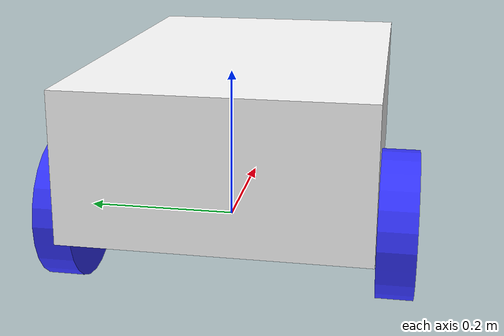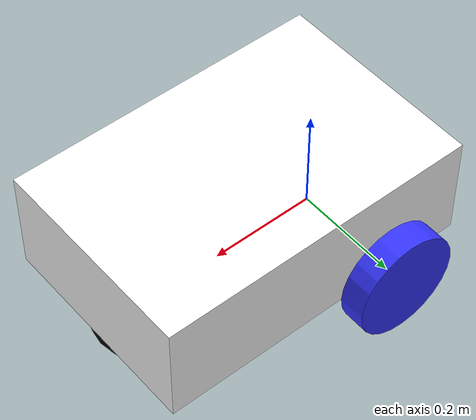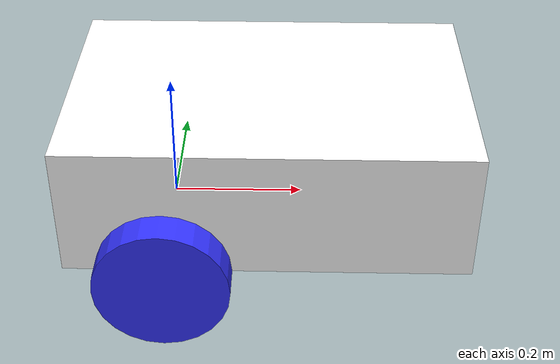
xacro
<?xml version="1.0"?>
<robot xmlns:xacro="http://www.ros.org/wiki/xacro" >

    <xacro:include filename="inertial_macros.xacro"/>

    <material name="white">
        <color rgba="1 1 1 1" />
    </material>
    <material name="blue">
        <color rgba="0.2 0.2 1 1" />
    </material>
    <material name="black">
        <color rgba="0 0 0 1" />
    </material>

    <link name="base_link">
    </link>

    <joint name="chassis_joint" type="fixed">
        <parent link="base_link"/>
        <child link="chassis"/>
        <origin xyz="-0.15 0 0"/>
    </joint>

    <link name="chassis">
        <visual>
            <origin xyz="0.3 0 0.1"/>
            <geometry>
                <box size="0.6 0.4 0.2"/>
            </geometry>
            <material name="white"/>
        </visual>
        <collision>
            <origin xyz="0.3 0 0.1"/>
            <geometry>
                <box size="0.6 0.4 0.2"/>
            </geometry>
        </collision>
        <xacro:inertial_box mass="5.0" x="0.6" y="0.4" z="0.2">
            <origin xyz="0.3 0 0.1" rpy="0 0 0"/>
        </xacro:inertial_box>
    </link>
    <gazebo reference="chassis">
        <material>Gazebo/White</material>
    </gazebo>

    <joint name="left_wheel_joint" type="continuous">
        <parent link="base_link"/>
        <child link="left_wheel"/>
        <origin xyz="0 0.225 0" rpy="-1.5707 0 0" />
        <axis xyz="0 0 1"/>
    </joint>

    <link name="left_wheel">
        <visual>
            <geometry>
                <cylinder radius="0.1" length="0.05"/>
            </geometry>
            <material name="blue"/>
        </visual>
        <collision>
            <geometry>
                <cylinder radius="0.1" length="0.05"/>
            </geometry>
        </collision>
        <xacro:inertial_cylinder mass="1.0" length="0.05" radius="0.1">
            <origin xyz="0 0 0" rpy="0 0 0"/>
        </xacro:inertial_cylinder>
    </link>
    <gazebo reference="left_wheel">
        <material>Gazebo/Blue</material>
    </gazebo>

    <joint name="right_wheel_joint" type="continuous">
        <parent link="base_link"/>
        <child link="right_wheel"/>
        <origin xyz="0 -0.225 0" rpy="1.5707 0 0" />
        <axis xyz="0 0 -1"/>
    </joint>

    <link name="right_wheel">
        <visual>
            <geometry>
                <cylinder radius="0.1" length="0.05"/>
            </geometry>
            <material name="blue"/>
        </visual>
        <collision>
            <geometry>
                <cylinder radius="0.1" length="0.05"/>
            </geometry>
        </collision>
        <xacro:inertial_cylinder mass="1.0" length="0.05" radius="0.1">
            <origin xyz="0 0 0" rpy="0 0 0"/>
        </xacro:inertial_cylinder>
    </link>
    <gazebo reference="right_wheel">
        <material>Gazebo/Blue</material>
    </gazebo>

    <joint name="caster_wheel_joint" type="fixed">
        <parent link="chassis"/>
        <child link="caster_wheel"/>
        <origin xyz="0.5 0 0"/>
    </joint>

    <link name="caster_wheel">
        <visual>
            <geometry>
                <sphere radius="0.1"/>
            </geometry>
            <material name="black"/>
        </visual>
        <collision>
            <geometry>
                <sphere radius="0.1"/>
            </geometry>
        </collision>
        <xacro:inertial_sphere mass="0.5" radius="0.1">
            <origin xyz="0 0 0" rpy="0 0 0"/>
        </xacro:inertial_sphere>
    </link>
    <gazebo reference="caster_wheel">
        <material>Gazebo/Black</material>
        <mu1 value="0.001"/>
        <mu2 value="0.001"/>
    </gazebo>

</robot>

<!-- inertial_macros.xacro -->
<robot xmlns:xacro="http://www.ros.org/wiki/xacro" >

    <xacro:macro name="inertial_sphere" params="mass radius *origin">
        <inertial>
            <xacro:insert_block name="origin"/>
            <mass value="${mass}" />
            <inertia ixx="${(2/5) * mass * (radius*radius)}" ixy="0.0" ixz="0.0"
                    iyy="${(2/5) * mass * (radius*radius)}" iyz="0.0"
                    izz="${(2/5) * mass * (radius*radius)}" />
        </inertial>
    </xacro:macro>

    <xacro:macro name="inertial_box" params="mass x y z *origin">
        <inertial>
            <xacro:insert_block name="origin"/>
            <mass value="${mass}" />
            <inertia ixx="${(1/12) * mass * (y*y+z*z)}" ixy="0.0" ixz="0.0"
                    iyy="${(1/12) * mass * (x*x+z*z)}" iyz="0.0"
                    izz="${(1/12) * mass * (x*x+y*y)}" />
        </inertial>
    </xacro:macro>

    <xacro:macro name="inertial_cylinder" params="mass length radius *origin">
        <inertial>
            <xacro:insert_block name="origin"/>
            <mass value="${mass}" />
            <inertia ixx="${(1/12) * mass * (3*radius*radius + length*length)}" ixy="0.0" ixz="0.0"
                    iyy="${(1/12) * mass * (3*radius*radius + length*length)}" iyz="0.0"
                    izz="${(1/2) * mass * (radius*radius)}" />
        </inertial>
    </xacro:macro>

</robot>
